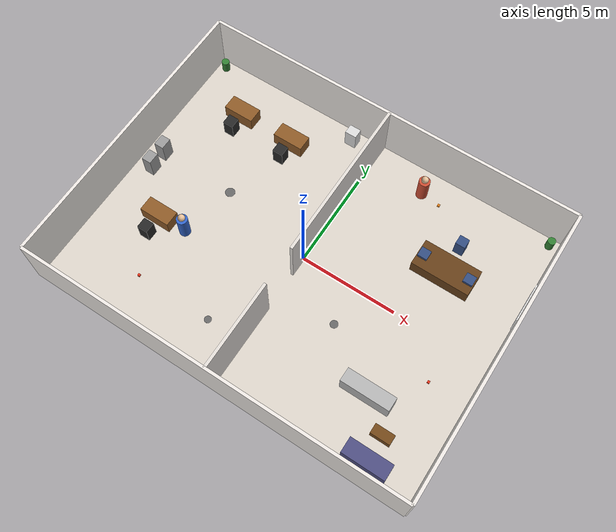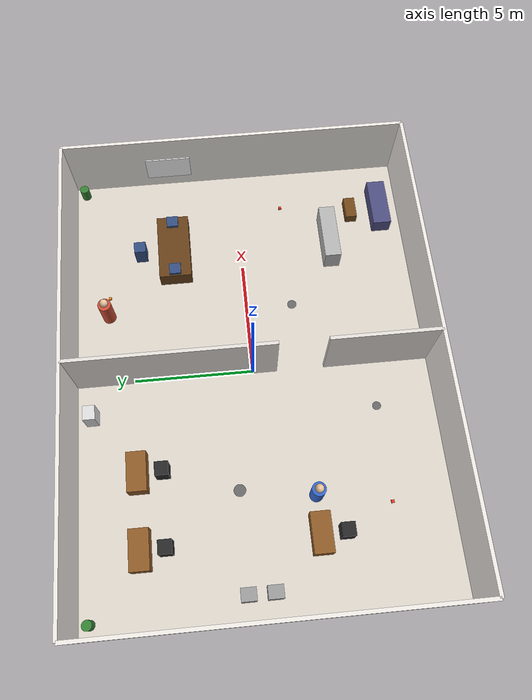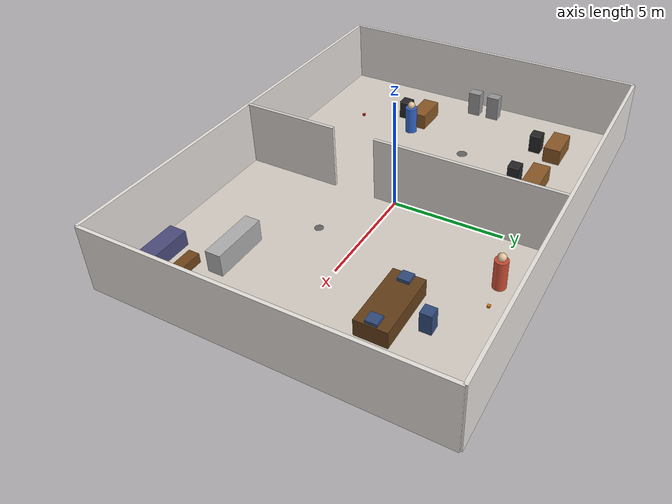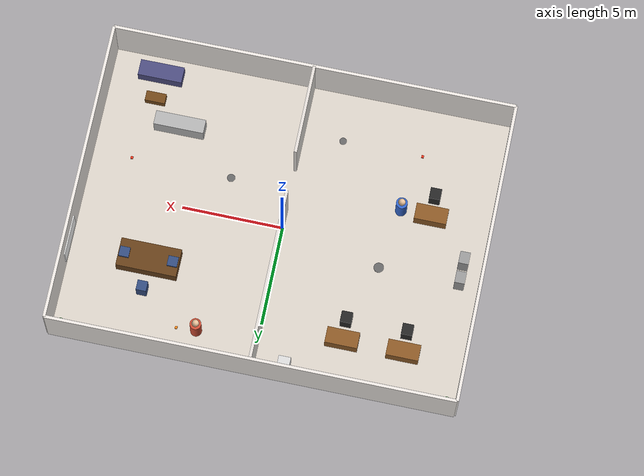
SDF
<?xml version="1.0" ?>
<sdf version="1.9">
  <world name="office_world">
    <physics name="1ms" type="ignored">
      <max_step_size>0.001</max_step_size>
      <real_time_factor>1.0</real_time_factor>
    </physics>
    <plugin filename="gz-sim-physics-system"        name="gz::sim::systems::Physics"/>
    <plugin filename="gz-sim-user-commands-system"  name="gz::sim::systems::UserCommands"/>
    <plugin filename="gz-sim-scene-broadcaster-system" name="gz::sim::systems::SceneBroadcaster"/>
    <plugin filename="gz-sim-sensors-system"        name="gz::sim::systems::Sensors">
      <render_engine>ogre2</render_engine>
    </plugin>
    <!-- Bird's eye camera start position -->
    <gui fullscreen="0">
      <camera name="user_camera">
        <pose>0 0 25 0 1.5707963 0</pose>
        <projection_type>orthographic</projection_type>
      </camera>
    </gui>

    <light type="directional" name="sun">
      <cast_shadows>true</cast_shadows>
      <pose>0 0 10 0 0 0</pose>
      <diffuse>0.9 0.9 0.85 1</diffuse>
      <specular>0.3 0.3 0.3 1</specular>
      <attenuation><range>1000</range><constant>0.9</constant><linear>0.01</linear><quadratic>0.001</quadratic></attenuation>
      <direction>-0.5 0.1 -0.9</direction>
    </light>

    <!-- Floor -->
    <model name="floor">
      <static>true</static>
      <link name="link">
        <collision name="collision">
          <geometry><plane><normal>0 0 1</normal><size>20 15</size></plane></geometry>
        </collision>
        <visual name="visual">
          <geometry><plane><normal>0 0 1</normal><size>20 15</size></plane></geometry>
          <material>
            <ambient>0.85 0.82 0.78 1</ambient>
            <diffuse>0.85 0.82 0.78 1</diffuse>
          </material>
        </visual>
      </link>
    </model>

    <!-- ===== OFFICE WALLS (20x15m room) ===== -->
    <model name="wall_north">
      <static>true</static>
      <link name="link">
        <pose>0 7.5 1.5 0 0 0</pose>
        <collision name="c"><geometry><box><size>20 0.15 3</size></box></geometry></collision>
        <visual name="v">
          <geometry><box><size>20 0.15 3</size></box></geometry>
          <material><ambient>0.92 0.90 0.88 1</ambient><diffuse>0.92 0.90 0.88 1</diffuse></material>
        </visual>
      </link>
    </model>

    <model name="wall_south">
      <static>true</static>
      <link name="link">
        <pose>0 -7.5 1.5 0 0 0</pose>
        <collision name="c"><geometry><box><size>20 0.15 3</size></box></geometry></collision>
        <visual name="v">
          <geometry><box><size>20 0.15 3</size></box></geometry>
          <material><ambient>0.92 0.90 0.88 1</ambient><diffuse>0.92 0.90 0.88 1</diffuse></material>
        </visual>
      </link>
    </model>

    <model name="wall_east">
      <static>true</static>
      <link name="link">
        <pose>10 0 1.5 0 0 0</pose>
        <collision name="c"><geometry><box><size>0.15 15 3</size></box></geometry></collision>
        <visual name="v">
          <geometry><box><size>0.15 15 3</size></box></geometry>
          <material><ambient>0.92 0.90 0.88 1</ambient><diffuse>0.92 0.90 0.88 1</diffuse></material>
        </visual>
      </link>
    </model>

    <model name="wall_west">
      <static>true</static>
      <link name="link">
        <pose>-10 0 1.5 0 0 0</pose>
        <collision name="c"><geometry><box><size>0.15 15 3</size></box></geometry></collision>
        <visual name="v">
          <geometry><box><size>0.15 15 3</size></box></geometry>
          <material><ambient>0.92 0.90 0.88 1</ambient><diffuse>0.92 0.90 0.88 1</diffuse></material>
        </visual>
      </link>
    </model>

    <!-- Internal divider wall with doorway gap -->
    <!-- Gap is y=-3.0 to y=-1.0 (2m wide doorway, centre at y=-2) -->
    <model name="divider_left">
      <static>true</static>
      <link name="link">
        <pose>0 3.25 1.5 0 0 0</pose>
        <collision name="c"><geometry><box><size>0.15 8.5 3</size></box></geometry></collision>
        <visual name="v">
          <geometry><box><size>0.15 8.5 3</size></box></geometry>
          <material><ambient>0.88 0.86 0.84 1</ambient><diffuse>0.88 0.86 0.84 1</diffuse></material>
        </visual>
      </link>
    </model>
    <!-- doorway gap: -2.5 to 0 is open -->
    <model name="divider_right">
      <static>true</static>
      <link name="link">
        <pose>0 -5.25 1.5 0 0 0</pose>
        <collision name="c"><geometry><box><size>0.15 4.5 3</size></box></geometry></collision>
        <visual name="v">
          <geometry><box><size>0.15 4.5 3</size></box></geometry>
          <material><ambient>0.88 0.86 0.84 1</ambient><diffuse>0.88 0.86 0.84 1</diffuse></material>
        </visual>
      </link>
    </model>

    <!-- ===== OFFICE FURNITURE — Zone A (left side) ===== -->

    <!-- Desk 1 -->
    <model name="desk_1">
      <static>true</static>
      <pose>-7 5 0.38 0 0 0</pose>
      <link name="link">
        <collision name="c"><geometry><box><size>1.6 0.8 0.76</size></box></geometry></collision>
        <visual name="v">
          <geometry><box><size>1.6 0.8 0.76</size></box></geometry>
          <material><ambient>0.55 0.35 0.15 1</ambient><diffuse>0.55 0.35 0.15 1</diffuse></material>
        </visual>
      </link>
    </model>

    <!-- Office chair 1 -->
    <model name="chair_1">
      <static>true</static>
      <pose>-7 4 0.45 0 0 0</pose>
      <link name="link">
        <collision name="c"><geometry><box><size>0.55 0.55 0.9</size></box></geometry></collision>
        <visual name="v">
          <geometry><box><size>0.55 0.55 0.9</size></box></geometry>
          <material><ambient>0.15 0.15 0.15 1</ambient><diffuse>0.15 0.15 0.15 1</diffuse></material>
        </visual>
      </link>
    </model>

    <!-- Desk 2 -->
    <model name="desk_2">
      <static>true</static>
      <pose>-4 5 0.38 0 0 0</pose>
      <link name="link">
        <collision name="c"><geometry><box><size>1.6 0.8 0.76</size></box></geometry></collision>
        <visual name="v">
          <geometry><box><size>1.6 0.8 0.76</size></box></geometry>
          <material><ambient>0.55 0.35 0.15 1</ambient><diffuse>0.55 0.35 0.15 1</diffuse></material>
        </visual>
      </link>
    </model>

    <!-- Office chair 2 -->
    <model name="chair_2">
      <static>true</static>
      <pose>-4 4 0.45 0 0 0</pose>
      <link name="link">
        <collision name="c"><geometry><box><size>0.55 0.55 0.9</size></box></geometry></collision>
        <visual name="v">
          <geometry><box><size>0.55 0.55 0.9</size></box></geometry>
          <material><ambient>0.15 0.15 0.15 1</ambient><diffuse>0.15 0.15 0.15 1</diffuse></material>
        </visual>
      </link>
    </model>

    <!-- Desk 3 -->
    <model name="desk_3">
      <static>true</static>
      <pose>-7 -2 0.38 0 0 0</pose>
      <link name="link">
        <collision name="c"><geometry><box><size>1.6 0.8 0.76</size></box></geometry></collision>
        <visual name="v">
          <geometry><box><size>1.6 0.8 0.76</size></box></geometry>
          <material><ambient>0.55 0.35 0.15 1</ambient><diffuse>0.55 0.35 0.15 1</diffuse></material>
        </visual>
      </link>
    </model>

    <!-- Office chair 3 -->
    <model name="chair_3">
      <static>true</static>
      <pose>-7 -3 0.45 0 0 0</pose>
      <link name="link">
        <collision name="c"><geometry><box><size>0.55 0.55 0.9</size></box></geometry></collision>
        <visual name="v">
          <geometry><box><size>0.55 0.55 0.9</size></box></geometry>
          <material><ambient>0.15 0.15 0.15 1</ambient><diffuse>0.15 0.15 0.15 1</diffuse></material>
        </visual>
      </link>
    </model>

    <!-- Filing cabinet row -->
    <model name="cabinet_1">
      <static>true</static>
      <pose>-9 0 0.6 0 0 0</pose>
      <link name="link">
        <collision name="c"><geometry><box><size>0.5 0.6 1.2</size></box></geometry></collision>
        <visual name="v">
          <geometry><box><size>0.5 0.6 1.2</size></box></geometry>
          <material><ambient>0.6 0.6 0.6 1</ambient><diffuse>0.6 0.6 0.6 1</diffuse></material>
        </visual>
      </link>
    </model>

    <model name="cabinet_2">
      <static>true</static>
      <pose>-9 1 0.6 0 0 0</pose>
      <link name="link">
        <collision name="c"><geometry><box><size>0.5 0.6 1.2</size></box></geometry></collision>
        <visual name="v">
          <geometry><box><size>0.5 0.6 1.2</size></box></geometry>
          <material><ambient>0.6 0.6 0.6 1</ambient><diffuse>0.6 0.6 0.6 1</diffuse></material>
        </visual>
      </link>
    </model>

    <!-- ===== OFFICE FURNITURE — Zone B (right side, meeting room) ===== -->

    <!-- Conference table -->
    <model name="conf_table">
      <static>true</static>
      <pose>6 3 0.38 0 0 0</pose>
      <link name="link">
        <collision name="c"><geometry><box><size>3.0 1.4 0.76</size></box></geometry></collision>
        <visual name="v">
          <geometry><box><size>3.0 1.4 0.76</size></box></geometry>
          <material><ambient>0.4 0.25 0.1 1</ambient><diffuse>0.4 0.25 0.1 1</diffuse></material>
        </visual>
      </link>
    </model>

    <!-- Meeting chairs around table -->
    <model name="mchair_1">
      <static>true</static>
      <pose>4.8 3 0.45 0 0 1.5708</pose>
      <link name="link">
        <collision name="c"><geometry><box><size>0.5 0.5 0.9</size></box></geometry></collision>
        <visual name="v">
          <geometry><box><size>0.5 0.5 0.9</size></box></geometry>
          <material><ambient>0.2 0.3 0.5 1</ambient><diffuse>0.2 0.3 0.5 1</diffuse></material>
        </visual>
      </link>
    </model>

    <model name="mchair_2">
      <static>true</static>
      <pose>6 4.5 0.45 0 0 0</pose>
      <link name="link">
        <collision name="c"><geometry><box><size>0.5 0.5 0.9</size></box></geometry></collision>
        <visual name="v">
          <geometry><box><size>0.5 0.5 0.9</size></box></geometry>
          <material><ambient>0.2 0.3 0.5 1</ambient><diffuse>0.2 0.3 0.5 1</diffuse></material>
        </visual>
      </link>
    </model>

    <model name="mchair_3">
      <static>true</static>
      <pose>7.2 3 0.45 0 0 1.5708</pose>
      <link name="link">
        <collision name="c"><geometry><box><size>0.5 0.5 0.9</size></box></geometry></collision>
        <visual name="v">
          <geometry><box><size>0.5 0.5 0.9</size></box></geometry>
          <material><ambient>0.2 0.3 0.5 1</ambient><diffuse>0.2 0.3 0.5 1</diffuse></material>
        </visual>
      </link>
    </model>

    <!-- Whiteboard -->
    <model name="whiteboard">
      <static>true</static>
      <pose>9.9 3 1.2 0 0 0</pose>
      <link name="link">
        <collision name="c"><geometry><box><size>0.05 2.0 1.2</size></box></geometry></collision>
        <visual name="v">
          <geometry><box><size>0.05 2.0 1.2</size></box></geometry>
          <material><ambient>0.98 0.98 0.98 1</ambient><diffuse>0.98 0.98 0.98 1</diffuse></material>
        </visual>
      </link>
    </model>

    <!-- Reception desk -->
    <model name="reception_desk">
      <static>true</static>
      <pose>6 -4 0.5 0 0 0</pose>
      <link name="link">
        <collision name="c"><geometry><box><size>2.5 0.7 1.0</size></box></geometry></collision>
        <visual name="v">
          <geometry><box><size>2.5 0.7 1.0</size></box></geometry>
          <material><ambient>0.7 0.7 0.7 1</ambient><diffuse>0.7 0.7 0.7 1</diffuse></material>
        </visual>
      </link>
    </model>

    <!-- Waiting area sofa -->
    <model name="sofa">
      <static>true</static>
      <pose>7.5 -6.5 0.35 0 0 0</pose>
      <link name="link">
        <collision name="c"><geometry><box><size>2.2 0.8 0.7</size></box></geometry></collision>
        <visual name="v">
          <geometry><box><size>2.2 0.8 0.7</size></box></geometry>
          <material><ambient>0.3 0.3 0.5 1</ambient><diffuse>0.3 0.3 0.5 1</diffuse></material>
        </visual>
      </link>
    </model>

    <!-- Coffee table -->
    <model name="coffee_table">
      <static>true</static>
      <pose>7.5 -5.2 0.22 0 0 0</pose>
      <link name="link">
        <collision name="c"><geometry><box><size>1.0 0.5 0.44</size></box></geometry></collision>
        <visual name="v">
          <geometry><box><size>1.0 0.5 0.44</size></box></geometry>
          <material><ambient>0.45 0.28 0.1 1</ambient><diffuse>0.45 0.28 0.1 1</diffuse></material>
        </visual>
      </link>
    </model>

    <!-- Printer/copier -->
    <model name="printer">
      <static>true</static>
      <pose>-1.5 6.8 0.5 0 0 0</pose>
      <link name="link">
        <collision name="c"><geometry><box><size>0.6 0.5 1.0</size></box></geometry></collision>
        <visual name="v">
          <geometry><box><size>0.6 0.5 1.0</size></box></geometry>
          <material><ambient>0.85 0.85 0.85 1</ambient><diffuse>0.85 0.85 0.85 1</diffuse></material>
        </visual>
      </link>
    </model>

    <!-- Plant pot corners -->
    <model name="plant_1">
      <static>true</static>
      <pose>9.5 7 0.3 0 0 0</pose>
      <link name="link">
        <collision name="c"><geometry><cylinder><radius>0.2</radius><length>0.6</length></cylinder></geometry></collision>
        <visual name="v">
          <geometry><cylinder><radius>0.2</radius><length>0.6</length></cylinder></geometry>
          <material><ambient>0.2 0.5 0.2 1</ambient><diffuse>0.2 0.5 0.2 1</diffuse></material>
        </visual>
      </link>
    </model>

    <model name="plant_2">
      <static>true</static>
      <pose>-9.5 7 0.3 0 0 0</pose>
      <link name="link">
        <collision name="c"><geometry><cylinder><radius>0.2</radius><length>0.6</length></cylinder></geometry></collision>
        <visual name="v">
          <geometry><cylinder><radius>0.2</radius><length>0.6</length></cylinder></geometry>
          <material><ambient>0.2 0.5 0.2 1</ambient><diffuse>0.2 0.5 0.2 1</diffuse></material>
        </visual>
      </link>
    </model>

    <!-- ===== CLEANING TARGETS ===== -->

    <!-- Dust spots (grey flat discs) -->
    <model name="dust_1">
      <static>true</static>
      <pose>-5 1 0.001 0 0 0</pose>
      <link name="link">
        <visual name="v">
          <geometry><cylinder><radius>0.25</radius><length>0.002</length></cylinder></geometry>
          <material><ambient>0.4 0.4 0.4 0.9</ambient><diffuse>0.4 0.4 0.4 0.9</diffuse></material>
        </visual>
      </link>
    </model>

    <model name="dust_2">
      <static>true</static>
      <pose>3 -2 0.001 0 0 0</pose>
      <link name="link">
        <visual name="v">
          <geometry><cylinder><radius>0.2</radius><length>0.002</length></cylinder></geometry>
          <material><ambient>0.4 0.4 0.4 0.9</ambient><diffuse>0.4 0.4 0.4 0.9</diffuse></material>
        </visual>
      </link>
    </model>

    <model name="dust_3">
      <static>true</static>
      <pose>-2 -5 0.001 0 0 0</pose>
      <link name="link">
        <visual name="v">
          <geometry><cylinder><radius>0.18</radius><length>0.002</length></cylinder></geometry>
          <material><ambient>0.4 0.4 0.4 0.9</ambient><diffuse>0.4 0.4 0.4 0.9</diffuse></material>
        </visual>
      </link>
    </model>

    <!-- Trash items (red/orange small boxes) -->
    <model name="trash_1">
      <static>true</static>
      <pose>-6 -5 0.05 0 0 0</pose>
      <link name="link">
        <collision name="c"><geometry><box><size>0.12 0.12 0.1</size></box></geometry></collision>
        <visual name="v">
          <geometry><box><size>0.12 0.12 0.1</size></box></geometry>
          <material><ambient>0.9 0.2 0.1 1</ambient><diffuse>0.9 0.2 0.1 1</diffuse></material>
        </visual>
      </link>
    </model>

    <model name="trash_2">
      <static>true</static>
      <pose>4 6 0.05 0 0 0</pose>
      <link name="link">
        <collision name="c"><geometry><box><size>0.12 0.12 0.1</size></box></geometry></collision>
        <visual name="v">
          <geometry><box><size>0.12 0.12 0.1</size></box></geometry>
          <material><ambient>0.9 0.5 0.1 1</ambient><diffuse>0.9 0.5 0.1 1</diffuse></material>
        </visual>
      </link>
    </model>

    <model name="trash_3">
      <static>true</static>
      <pose>8 -2 0.05 0 0 0</pose>
      <link name="link">
        <collision name="c"><geometry><box><size>0.12 0.12 0.1</size></box></geometry></collision>
        <visual name="v">
          <geometry><box><size>0.12 0.12 0.1</size></box></geometry>
          <material><ambient>0.9 0.2 0.1 1</ambient><diffuse>0.9 0.2 0.1 1</diffuse></material>
        </visual>
      </link>
    </model>

    <!-- ===== MOVING SUBJECTS (physics-based, ROS 2 controlled) ===== -->

    <model name="person_1">
      <pose>-5.5 -2.0 0.85 0 0 0</pose>
      <link name="body">
        <!-- Gravity disabled: VelocityControl only commands linear.x / angular.z,
             so without this the model falls under gravity unchecked. -->
        <gravity>false</gravity>
        <inertial>
          <mass>70</mass>
          <inertia>
            <!-- ixx / iyy very high → resists tipping from wall-collision impulses -->
            <ixx>10000</ixx><ixy>0</ixy><ixz>0</ixz>
            <iyy>10000</iyy><iyz>0</iyz><izz>5</izz>
          </inertia>
        </inertial>
        <collision name="c">
          <geometry><cylinder><radius>0.28</radius><length>1.7</length></cylinder></geometry>
          <surface>
            <friction><ode><mu>0.8</mu><mu2>0.8</mu2></ode></friction>
            <contact><ode><min_depth>0.001</min_depth></ode></contact>
          </surface>
        </collision>
        <visual name="torso">
          <geometry><cylinder><radius>0.28</radius><length>1.3</length></cylinder></geometry>
          <material><ambient>0.2 0.4 0.8 1</ambient><diffuse>0.2 0.4 0.8 1</diffuse></material>
        </visual>
        <visual name="head">
          <pose>0 0 0.78 0 0 0</pose>
          <geometry><sphere><radius>0.18</radius></sphere></geometry>
          <material><ambient>0.9 0.75 0.6 1</ambient><diffuse>0.9 0.75 0.6 1</diffuse></material>
        </visual>
      </link>
      <plugin filename="gz-sim-velocity-control-system"
              name="gz::sim::systems::VelocityControl"/>
      <plugin filename="gz-sim-odometry-publisher-system"
              name="gz::sim::systems::OdometryPublisher">
        <odom_publish_frequency>10</odom_publish_frequency>
      </plugin>
    </model>

    <model name="person_2">
      <pose>3.0 6.0 0.85 0 0 -1.5708</pose>
      <link name="body">
        <gravity>false</gravity>
        <inertial>
          <mass>70</mass>
          <inertia>
            <ixx>10000</ixx><ixy>0</ixy><ixz>0</ixz>
            <iyy>10000</iyy><iyz>0</iyz><izz>5</izz>
          </inertia>
        </inertial>
        <collision name="c">
          <geometry><cylinder><radius>0.28</radius><length>1.7</length></cylinder></geometry>
          <surface>
            <friction><ode><mu>0.8</mu><mu2>0.8</mu2></ode></friction>
            <contact><ode><min_depth>0.001</min_depth></ode></contact>
          </surface>
        </collision>
        <visual name="torso">
          <geometry><cylinder><radius>0.28</radius><length>1.3</length></cylinder></geometry>
          <material><ambient>0.8 0.3 0.2 1</ambient><diffuse>0.8 0.3 0.2 1</diffuse></material>
        </visual>
        <visual name="head">
          <pose>0 0 0.78 0 0 0</pose>
          <geometry><sphere><radius>0.18</radius></sphere></geometry>
          <material><ambient>0.9 0.75 0.6 1</ambient><diffuse>0.9 0.75 0.6 1</diffuse></material>
        </visual>
      </link>
      <plugin filename="gz-sim-velocity-control-system"
              name="gz::sim::systems::VelocityControl"/>
      <plugin filename="gz-sim-odometry-publisher-system"
              name="gz::sim::systems::OdometryPublisher">
        <odom_publish_frequency>10</odom_publish_frequency>
      </plugin>
    </model>

  </world>
</sdf>
